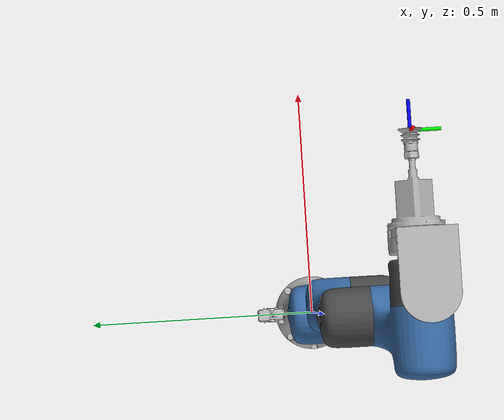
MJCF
<?xml version="1.0" ?>
<mujoco model="A02L-MP4-HT_defeature">
  <compiler angle="radian" meshdir="meshes/" autolimits="true"/>
  <option integrator="implicitfast"/>
  <default>
    <joint damping="0.1" armature="0.01"/>
    <geom contype="1" conaffinity="1"/>
  </default>

  <asset>
    <material name="black"     rgba="0.033 0.033 0.033 1" specular="0.1" shininess="0.1" reflectance="0"/>
    <material name="jointgray" rgba="0.278 0.278 0.278 1" specular="0.1" shininess="0.1" reflectance="0"/>
    <material name="linkgray"  rgba="0.72 0.72 0.72 1"   specular="0.15" shininess="0.12" reflectance="0"/>
    <material name="urblue"    rgba="0.22 0.42 0.65 1"   specular="0.15" shininess="0.12" reflectance="0"/>

    <mesh name="base_link" file="base_link.STL"/>
    <mesh name="link_1" file="link_1.STL"/>
    <mesh name="link_2" file="link_2.STL"/>
    <mesh name="link_3" file="link_3.STL"/>
    <mesh name="link_4" file="link_4.STL"/>
    <mesh name="link_5" file="link_5.STL"/>
    <mesh name="link_6" file="link_6.STL"/>
    <mesh name="link_7" file="link_7.STL"/>
    <mesh name="tool_link" file="tool_link.STL"/>
  </asset>

  <worldbody>
    <light pos="0 0 3" dir="0 0 -1" diffuse="0.8 0.8 0.8"/>
    <body name="base_link" pos="0 0 0">
      <inertial pos="9.543221631e-05 0.0006061456325 0.06887505259" mass="2.274218077" fullinertia="0.007538392306 0.007363481039 0.005679315086 -6.453638398e-08 1.0819055e-05 -4.863869237e-06"/>
      <geom name="base_link_visual" type="mesh" mesh="base_link" contype="0" conaffinity="0" group="1" material="linkgray"/>
      <geom name="base_link_collision" type="mesh" mesh="base_link" group="3" rgba="0.5 0.6 0.7 0.3" contype="0" conaffinity="0"/>
      <body name="link_1" pos="-0.00016498 4.6712e-05 0.1542">
        <inertial pos="2.651219785e-07 0.008742930967 0.1260948085" mass="2.714529976" fullinertia="0.01851678442 0.01879451818 0.004730990867 2.145269071e-08 8.338510135e-08 -0.001398144691"/>
        <joint name="joint_1" type="hinge" pos="0 0 0" axis="0 0 -1" range="-3.14 3.14" limited="true" damping="0.01" frictionloss="0"/>
        <geom name="link_1_visual" type="mesh" mesh="link_1" contype="0" conaffinity="0" group="1" material="urblue"/>
        <geom name="link_1_collision" type="mesh" mesh="link_1" group="3" rgba="0.5 0.6 0.7 0.3"/>
        <body name="link_2" pos="0.00037978 -0.0297 0.2104" euler="1.5708 0 0">
          <inertial pos="1.323206707e-07 0.06960504076 0.03925760995" mass="2.149136276" fullinertia="0.01327908992 0.002990029592 0.01369768894 -2.554995531e-08 5.169179882e-09 0.0004500972948"/>
          <joint name="joint_2" type="hinge" pos="0 0 0" axis="0 0 1" range="-3.14 3.14" limited="true"/>
          <geom name="link_2_visual" type="mesh" mesh="link_2" contype="0" conaffinity="0" group="1" material="jointgray"/>
          <geom name="link_2_collision" type="mesh" mesh="link_2" group="3" rgba="0.5 0.6 0.7 0.3"/>
          <body name="link_3" pos="-1.1281e-05 0.2047 0.034739" euler="-1.5708 0 0">
            <inertial pos="0.008051259662 -0.007108167229 0.115630035" mass="1.67843166" fullinertia="0.008950096072 0.009109785103 0.002130424236 7.209241995e-05 -0.0009260252905 0.0005631648847"/>
            <joint name="joint_3" type="hinge" pos="0 0 0" axis="0 0 1" range="-3.14 3.14" limited="true"/>
            <geom name="link_3_visual" type="mesh" mesh="link_3" contype="0" conaffinity="0" group="1" material="jointgray"/>
            <geom name="link_3_collision" type="mesh" mesh="link_3" group="3" rgba="0.5 0.6 0.7 0.3"/>
            <body name="link_4" pos="0.020002 0.0297 0.19" euler="-1.5708 0 0">
              <inertial pos="-0.01230248323 -0.07778344818 0.03260465739" mass="1.678402124" fullinertia="0.009148650296 0.002111202132 0.009322505525 -0.0009260030928 -8.654658792e-05 -0.0006686534937"/>
              <joint name="joint_4" type="hinge" pos="0 0 0" axis="0 0 1" range="-3.14 3.14" limited="true"/>
              <geom name="link_4_visual" type="mesh" mesh="link_4" contype="0" conaffinity="0" group="1" material="urblue"/>
              <geom name="link_4_collision" type="mesh" mesh="link_4" group="3" rgba="0.5 0.6 0.7 0.3"/>
              <body name="link_5" pos="-0.019966 -0.1947 0.024952" euler="1.5708 0 0">
                <inertial pos="-1.281852936e-07 0.006291647944 0.1142985949" mass="1.654733663" fullinertia="0.008767201966 0.008836680096 0.001942832868 1.54794339e-08 1.773652218e-08 -0.0004969161613"/>
                <joint name="joint_5" type="hinge" pos="0 0 0" axis="0 0 1" range="-3.14 3.14" limited="true"/>
                <geom name="link_5_visual" type="mesh" mesh="link_5" contype="0" conaffinity="0" group="1" material="jointgray"/>
                <geom name="link_5_collision" type="mesh" mesh="link_5" group="3" rgba="0.5 0.6 0.7 0.3"/>
                <body name="link_6" pos="2.6809e-05 -0.0297 0.19032" euler="1.5708 0 0">
                  <inertial pos="-0.02553005347 0.06041041027 0.05867688268" mass="1.783334073" fullinertia="0.007210337065 0.003691939381 0.007913825475 0.001846956831 0.0004879835232 -0.001226913531"/>
                  <joint name="joint_6" type="hinge" pos="0 0 0" axis="0 0 1" range="-3.14 3.14" limited="true"/>
                  <geom name="link_6_visual" type="mesh" mesh="link_6" contype="0" conaffinity="0" group="1" material="urblue"/>
                  <geom name="link_6_collision" type="mesh" mesh="link_6" group="3" rgba="0.5 0.6 0.7 0.3"/>
                  <body name="link_7" pos="0.0147 0.11 0.073" euler="0 1.5708 1.5708">
                    <inertial pos="-7.263636391e-05 1.716953037e-05 0.0379790808" mass="0.5807109786" fullinertia="0.0006301798988 0.0006316037531 0.0006838989933 4.907735119e-09 2.837743739e-07 -6.974942754e-08"/>
                    <joint name="joint_7" type="hinge" pos="0 0 0" axis="0 0 1" range="-3.14 3.14" limited="true"/>
                    <geom name="link_7_visual" type="mesh" mesh="link_7" contype="0" conaffinity="0" group="1" material="jointgray"/>
                    <geom name="link_7_collision" type="mesh" mesh="link_7" group="3" rgba="0.5 0.6 0.7 0.3"/>
                    <body name="tool_link" pos="0 0 0.081">
                      <inertial pos="0.04349784605 -4.744561468e-05 0.03364489909" mass="0.787892588" fullinertia="0.000830335702 0.0009963124001 0.0009509746819 1.005221673e-05 1.304931258e-06 5.215916772e-07"/>
                      <geom name="tool_link_visual" type="mesh" mesh="tool_link" contype="0" conaffinity="0" group="1" material="linkgray"/>
                      <geom name="tool_link_collision" type="mesh" mesh="tool_link" group="3" rgba="0.5 0.6 0.7 0.3"/>
                      <site name="end_effector"   pos="0 0 0.20" size="0.005"                                 rgba="1 1 0 1" group="2"/>
                      <site name="end_effector_x" type="cylinder" fromto="0 0 0.20  0.05 0 0.20" size="0.003" rgba="1 0 0 1" group="2"/>
                      <site name="end_effector_y" type="cylinder" fromto="0 0 0.20  0 0.05 0.20" size="0.003" rgba="0 1 0 1" group="2"/>
                      <site name="end_effector_z" type="cylinder" fromto="0 0 0.20  0 0 0.25"    size="0.003" rgba="0 0 1 1" group="2"/>
                    </body>
                  </body>
                </body>
              </body>
            </body>
          </body>
        </body>
      </body>
    </body>
  </worldbody>
  <actuator>
    <position name="joint_1_pd" joint="joint_1" kp="500" dampratio="1" ctrlrange="-3.14 3.14" ctrllimited="true"/>
    <position name="joint_2_pd" joint="joint_2" kp="700" dampratio="0.3" ctrlrange="-3.14 3.14" ctrllimited="true"/>
    <position name="joint_3_pd" joint="joint_3" kp="700" dampratio="0.3" ctrlrange="-3.14 3.14" ctrllimited="true"/>
    <position name="joint_4_pd" joint="joint_4" kp="700" dampratio="0.3" ctrlrange="-3.14 3.14" ctrllimited="true"/>
    <position name="joint_5_pd" joint="joint_5" kp="300" dampratio="0.3" ctrlrange="-3.14 3.14" ctrllimited="true"/>
    <position name="joint_6_pd" joint="joint_6" kp="100" dampratio="0.3" ctrlrange="-3.14 3.14" ctrllimited="true"/>
    <position name="joint_7_pd" joint="joint_7" kp="100" dampratio="1" ctrlrange="-3.14 3.14" ctrllimited="true"/>
  </actuator>
</mujoco>
